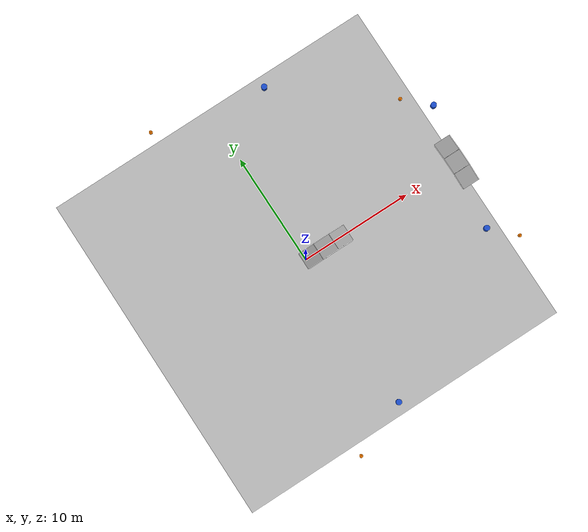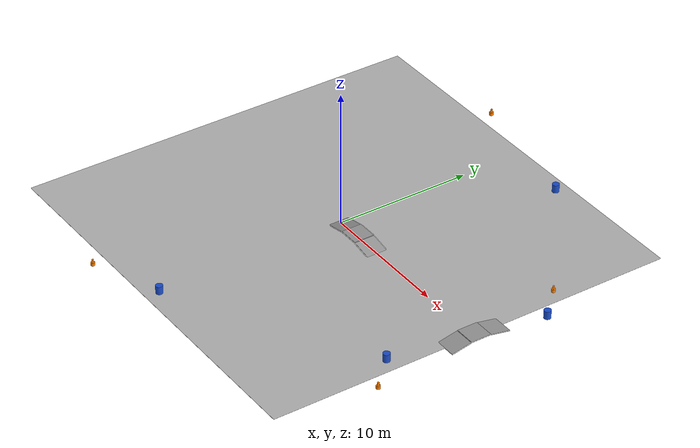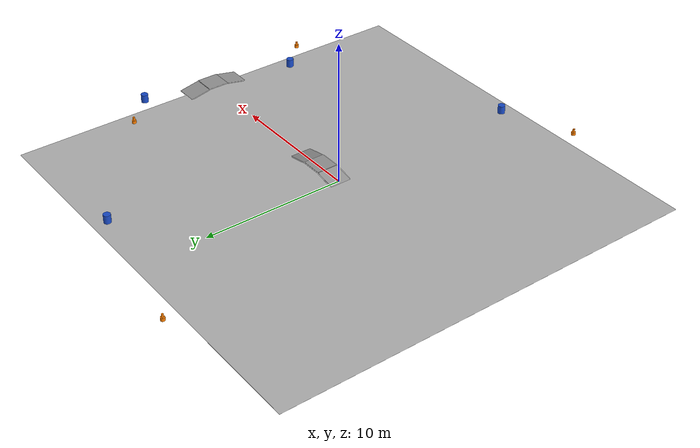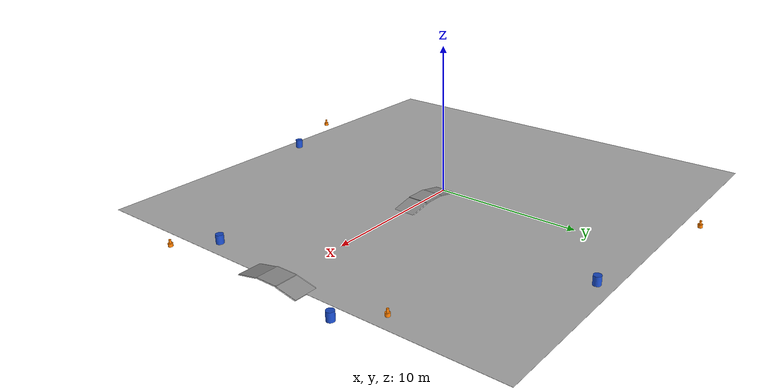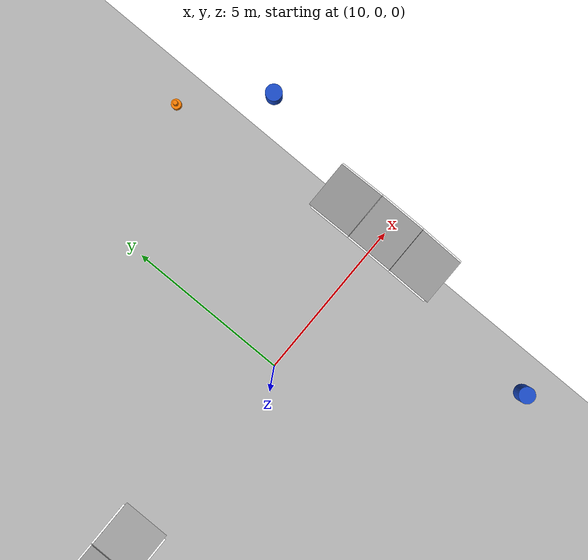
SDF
<sdf version="1.6">
 <world name="new_world">
  <physics type="ode">
   <max_step_size>0.001</max_step_size>
   <real_time_update_rate>1000</real_time_update_rate>
  </physics>
  <light type="directional" name="sun">
   <pose>0 0 10 0 0 0</pose>
   <diffuse>1 1 1 1</diffuse>
   <specular>0.2 0.2 0.2 1</specular>
   <direction>-0.5 0.1 -0.9</direction>
  </light>
  <include><uri>model://floor</uri></include>
  <include><uri>model://ramp</uri><name>ramp_1</name><pose>2 0 0 0 0 0</pose></include>
  <include><uri>model://cone</uri><name>c1</name><pose>-5.0 16.0 0 0 0 0</pose></include>
  <include><uri>model://barrel</uri><name>b1</name><pose>5.0 14.0 0 0 0 0</pose></include>
  <include><uri>model://cone</uri><name>c2</name><pose>14.0 7.0 0 0 0 0</pose></include>
  <include><uri>model://barrel</uri><name>b2</name><pose>16.0 5.0 0 0 0 0</pose></include>
  <include><uri>model://barrel</uri><name>b3</name><pose>14.0 -6.0 0 0 0 0</pose></include>
  <include><uri>model://cone</uri><name>c3</name><pose>16.0 -8.0 0 0 0 0</pose></include>
  <include><uri>model://barrel</uri><name>b4</name><pose>0.0 -14.0 0 0 0 0</pose></include>
  <include><uri>model://cone</uri><name>c4</name><pose>-5.0 -16.0 0 0 0 0</pose></include>
  <include><uri>model://ramp</uri><name>ramp_1</name><pose>15.0 0.0 0 0 0 -1.5708</pose></include>
 </world>
</sdf>

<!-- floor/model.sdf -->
<sdf version="1.6">
  <model name="custom_course">
    <static>true</static>
    <link name="link">
      <collision name="collision">
        <geometry>
          <box>
            <size>30 30 0.01</size> <!-- PUT YOUR COURSE SIZE HERE IN METERS -->
          </box>
        </geometry>
      </collision>
      <visual name="visual">
        <geometry>
          <box>
            <size>30 30 0.01</size> <!-- PUT YOUR COURSE SIZE HERE IN METERS -->
          </box>
        </geometry>
        <material>
          <script>
            <uri>model://floor/materials/scripts</uri>
            <uri>model://floor/materials/textures</uri>
            <name>CustomCourse/Diffuse</name>
          </script>
        </material>
      </visual>
    </link>
  </model>
</sdf>

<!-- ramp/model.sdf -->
<sdf version="1.6">
  <model name="ramp">
    <static>true</static>

    <!-- Up slope -->
    <link name="up_slope">
      <pose>-1.5 0 0.125 0 -0.1963 0</pose>
      <collision name="ramp_collision">
        <geometry><box><size>1.5 1.5 0.05</size></box></geometry>
        <surface>
          <friction><ode><mu>1.0</mu><mu2>1.0</mu2></ode></friction>
        </surface>
      </collision>
      <visual name="visual">
        <geometry><box><size>1.5 1.5 0.05</size></box></geometry>
        <material>
          <ambient>0.5 0.5 0.5 1</ambient>
          <diffuse>0.6 0.6 0.6 1</diffuse>
        </material>
      </visual>
    </link>

    <!-- Up slope lane lines -->
    <link name="up_slope_lane_left">
      <pose>-1.5 0.75 0.125 0 -0.1963 0</pose>
      <visual name="visual">
        <geometry><box><size>1.5 0.1 0.01</size></box></geometry>
        <material>
          <ambient>1 1 1 1</ambient>
          <diffuse>1 1 1 1</diffuse>
          <emissive>1 1 1 1</emissive>
        </material>
      </visual>
    </link>
    <link name="up_slope_lane_right">
      <pose>-1.5 -0.75 0.125 0 -0.1963 0</pose>
      <visual name="visual">
        <geometry><box><size>1.5 0.1 0.01</size></box></geometry>
        <material>
          <ambient>1 1 1 1</ambient>
          <diffuse>1 1 1 1</diffuse>
          <emissive>1 1 1 1</emissive>
        </material>
      </visual>
    </link>

    <!-- Flat top -->
    <link name="flat_top">
      <pose>0 0 0.3 0 0 0</pose>
      <collision name="ramp_collision">
        <geometry><box><size>1.5 1.5 0.05</size></box></geometry>
        <surface>
          <friction><ode><mu>1.0</mu><mu2>1.0</mu2></ode></friction>
        </surface>
      </collision>
      <visual name="visual">
        <geometry><box><size>1.5 1.5 0.05</size></box></geometry>
        <material>
          <ambient>0.5 0.5 0.5 1</ambient>
          <diffuse>0.6 0.6 0.6 1</diffuse>
        </material>
      </visual>
    </link>

    <!-- Flat top lane lines -->
    <link name="flat_top_lane_left">
      <pose>0 0.75 0.3 0 0 0</pose>
      <visual name="visual">
        <geometry><box><size>1.5 0.1 0.01</size></box></geometry>
        <material>
          <ambient>1 1 1 1</ambient>
          <diffuse>1 1 1 1</diffuse>
          <emissive>1 1 1 1</emissive>
        </material>
      </visual>
    </link>
    <link name="flat_top_lane_right">
      <pose>0 -0.75 0.3 0 0 0</pose>
      <visual name="visual">
        <geometry><box><size>1.5 0.1 0.01</size></box></geometry>
        <material>
          <ambient>1 1 1 1</ambient>
          <diffuse>1 1 1 1</diffuse>
          <emissive>1 1 1 1</emissive>
        </material>
      </visual>
    </link>

    <!-- Down slope -->
    <link name="down_slope">
      <pose>1.5 0 0.125 0 0.1963 0</pose>
      <collision name="ramp_collision">
        <geometry><box><size>1.5 1.5 0.05</size></box></geometry>
        <surface>
          <friction><ode><mu>1.0</mu><mu2>1.0</mu2></ode></friction>
        </surface>
      </collision>
      <visual name="visual">
        <geometry><box><size>1.5 1.5 0.05</size></box></geometry>
        <material>
          <ambient>0.5 0.5 0.5 1</ambient>
          <diffuse>0.6 0.6 0.6 1</diffuse>
        </material>
      </visual>
    </link>

    <!-- Down slope lane lines -->
    <link name="down_slope_lane_left">
      <pose>1.5 0.75 0.125 0 0.1963 0</pose>
      <visual name="visual">
        <geometry><box><size>1.5 0.1 0.01</size></box></geometry>
        <material>
          <ambient>1 1 1 1</ambient>
          <diffuse>1 1 1 1</diffuse>
          <emissive>1 1 1 1</emissive>
        </material>
      </visual>
    </link>
    <link name="down_slope_lane_right">
      <pose>1.5 -0.75 0.125 0 0.1963 0</pose>
      <visual name="visual">
        <geometry><box><size>1.5 0.1 0.01</size></box></geometry>
        <material>
          <ambient>1 1 1 1</ambient>
          <diffuse>1 1 1 1</diffuse>
          <emissive>1 1 1 1</emissive>
        </material>
      </visual>
    </link>

  </model>
</sdf>

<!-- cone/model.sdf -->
<sdf version="1.6">
  <model name="cone">
    <static>true</static>
    <link name="link">
      <!-- Base cylinder (wider bottom) -->
      <collision name="collision_base">
        <geometry>
          <cylinder>
            <radius>0.15</radius>
            <length>0.22</length>
          </cylinder>
        </geometry>
        <pose>0 0 0.11 0 0 0</pose>
      </collision>
      <visual name="visual_base">
        <geometry>
          <cylinder>
            <radius>0.15</radius>
            <length>0.22</length>
          </cylinder>
        </geometry>
        <pose>0 0 0.11 0 0 0</pose>
        <material>
          <ambient>1.0 0.5 0.0 1</ambient>
          <diffuse>1.0 0.5 0.0 1</diffuse>
          <specular>0.3 0.3 0.3 1</specular>
        </material>
      </visual>
      <!-- Top cylinder (narrower top) -->
      <collision name="collision_top">
        <geometry>
          <cylinder>
            <radius>0.07</radius>
            <length>0.23</length>
          </cylinder>
        </geometry>
        <pose>0 0 0.335 0 0 0</pose>
      </collision>
      <visual name="visual_top">
        <geometry>
          <cylinder>
            <radius>0.07</radius>
            <length>0.23</length>
          </cylinder>
        </geometry>
        <pose>0 0 0.335 0 0 0</pose>
        <material>
          <ambient>1.0 0.5 0.0 1</ambient>
          <diffuse>1.0 0.5 0.0 1</diffuse>
          <specular>0.3 0.3 0.3 1</specular>
        </material>
      </visual>
    </link>
  </model>
</sdf>

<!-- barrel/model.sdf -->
<sdf version="1.6">
  <model name="barrel">
    <static>true</static>
    <link name="link">
      <collision name="collision">
        <geometry>
          <cylinder>
            <radius>0.25</radius>
            <length>0.6</length>
          </cylinder>
        </geometry>
        <pose>0 0 0.3 0 0 0</pose>
      </collision>
      <visual name="visual">
        <geometry>
          <cylinder>
            <radius>0.25</radius>
            <length>0.6</length>
          </cylinder>
        </geometry>
        <pose>0 0 0.3 0 0 0</pose>
        <material>
          <ambient>0.1 0.3 0.8 1</ambient>
          <diffuse>0.1 0.3 0.8 1</diffuse>
          <specular>0.3 0.3 0.3 1</specular>
        </material>
      </visual>
    </link>
  </model>
</sdf>
